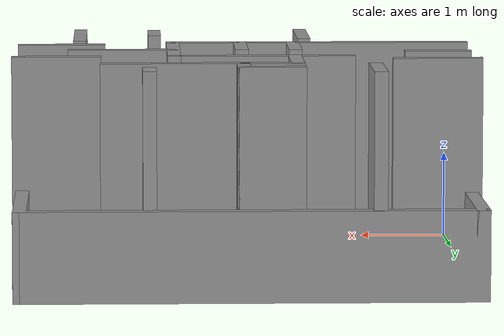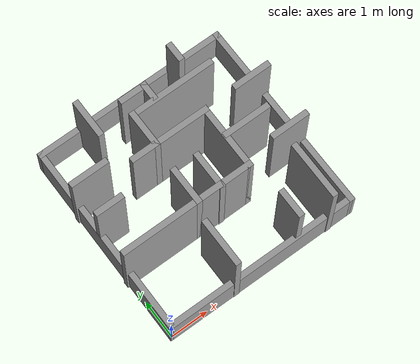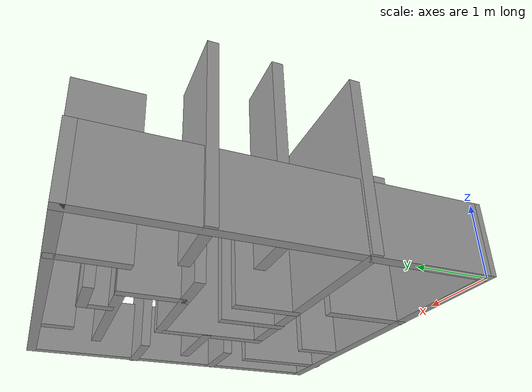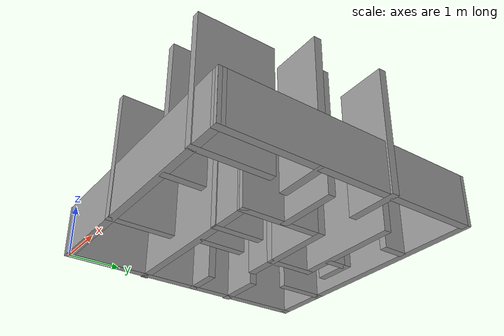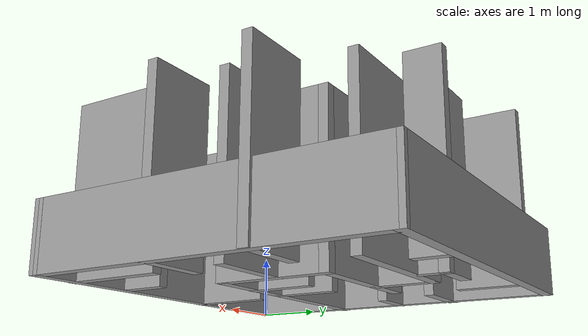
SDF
<?xml version='1.0'?>
<sdf version='1.7'>
  <model name='maze_gp_test'>
    <pose>2.50109 2.48306 0 0 -0 0</pose>
    <link name='Wall_0'>
      <collision name='Wall_0_Collision'>
        <geometry>
          <box>
            <size>5.15 0.15 1</size>
          </box>
        </geometry>
        <pose>0 0 0.5 0 -0 0</pose>
      </collision>
      <visual name='Wall_0_Visual'>
        <pose>0 0 0.5 0 -0 0</pose>
        <geometry>
          <box>
            <size>5.15 0.15 1</size>
          </box>
        </geometry>
        <material>
          <script>
            <uri>file://media/materials/scripts/gazebo.material</uri>
            <name>Gazebo/Grey</name>
          </script>
          <ambient>1 1 1 1</ambient>
        </material>
        <meta>
          <layer>0</layer>
        </meta>
      </visual>
      <pose>-2.50109 0.016936 0 0 -0 1.5708</pose>
    </link>
    <link name='Wall_10'>
      <collision name='Wall_10_Collision'>
        <geometry>
          <box>
            <size>1.5 0.15 2.5</size>
          </box>
        </geometry>
        <pose>0 0 1.25 0 -0 0</pose>
      </collision>
      <visual name='Wall_10_Visual'>
        <pose>0 0 1.25 0 -0 0</pose>
        <geometry>
          <box>
            <size>1.5 0.15 2.5</size>
          </box>
        </geometry>
        <material>
          <script>
            <uri>file://media/materials/scripts/gazebo.material</uri>
            <name>Gazebo/Grey</name>
          </script>
          <ambient>1 1 1 1</ambient>
        </material>
        <meta>
          <layer>0</layer>
        </meta>
      </visual>
      <pose>0.130196 0.709342 0 0 -0 3.14159</pose>
    </link>
    <link name='Wall_11'>
      <collision name='Wall_11_Collision'>
        <geometry>
          <box>
            <size>1 0.15 2.5</size>
          </box>
        </geometry>
        <pose>0 0 1.25 0 -0 0</pose>
      </collision>
      <visual name='Wall_11_Visual'>
        <pose>0 0 1.25 0 -0 0</pose>
        <geometry>
          <box>
            <size>1 0.15 2.5</size>
          </box>
        </geometry>
        <material>
          <script>
            <uri>file://media/materials/scripts/gazebo.material</uri>
            <name>Gazebo/Grey</name>
          </script>
          <ambient>1 1 1 1</ambient>
        </material>
        <meta>
          <layer>0</layer>
        </meta>
      </visual>
      <pose>-0.544804 1.13434 0 0 -0 1.5708</pose>
    </link>
    <link name='Wall_12'>
      <collision name='Wall_12_Collision'>
        <geometry>
          <box>
            <size>2.25 0.15 2.5</size>
          </box>
        </geometry>
        <pose>0 0 1.25 0 -0 0</pose>
      </collision>
      <visual name='Wall_12_Visual'>
        <pose>0 0 1.25 0 -0 0</pose>
        <geometry>
          <box>
            <size>2.25 0.15 2.5</size>
          </box>
        </geometry>
        <material>
          <script>
            <uri>file://media/materials/scripts/gazebo.material</uri>
            <name>Gazebo/Grey</name>
          </script>
          <ambient>1 1 1 1</ambient>
        </material>
        <meta>
          <layer>0</layer>
        </meta>
      </visual>
      <pose>0.505196 1.55934 0 0 -0 0</pose>
    </link>
    <link name='Wall_14'>
      <collision name='Wall_14_Collision'>
        <geometry>
          <box>
            <size>0.75 0.15 2.5</size>
          </box>
        </geometry>
        <pose>0 0 1.25 0 -0 0</pose>
      </collision>
      <visual name='Wall_14_Visual'>
        <pose>0 0 1.25 0 -0 0</pose>
        <geometry>
          <box>
            <size>0.75 0.15 2.5</size>
          </box>
        </geometry>
        <material>
          <script>
            <uri>file://media/materials/scripts/gazebo.material</uri>
            <name>Gazebo/Grey</name>
          </script>
          <ambient>1 1 1 1</ambient>
        </material>
        <meta>
          <layer>0</layer>
        </meta>
      </visual>
      <pose>1.00568 -2.14727 0 0 -0 1.5708</pose>
    </link>
    <link name='Wall_16'>
      <collision name='Wall_16_Collision'>
        <geometry>
          <box>
            <size>0.5 0.15 2.5</size>
          </box>
        </geometry>
        <pose>0 0 1.25 0 -0 0</pose>
      </collision>
      <visual name='Wall_16_Visual'>
        <pose>0 0 1.25 0 -0 0</pose>
        <geometry>
          <box>
            <size>0.5 0.15 2.5</size>
          </box>
        </geometry>
        <material>
          <script>
            <uri>file://media/materials/scripts/gazebo.material</uri>
            <name>Gazebo/Grey</name>
          </script>
          <ambient>1 1 1 1</ambient>
        </material>
        <meta>
          <layer>0</layer>
        </meta>
      </visual>
      <pose>0.061215 1.80291 0 0 -0 1.5708</pose>
    </link>
    <link name='Wall_17'>
      <collision name='Wall_17_Collision'>
        <geometry>
          <box>
            <size>0.75 0.15 2.5</size>
          </box>
        </geometry>
        <pose>0 0 1.25 0 -0 0</pose>
      </collision>
      <visual name='Wall_17_Visual'>
        <pose>0 0 1.25 0 -0 0</pose>
        <geometry>
          <box>
            <size>0.75 0.15 2.5</size>
          </box>
        </geometry>
        <material>
          <script>
            <uri>file://media/materials/scripts/gazebo.material</uri>
            <name>Gazebo/Grey</name>
          </script>
          <ambient>1 1 1 1</ambient>
        </material>
        <meta>
          <layer>0</layer>
        </meta>
      </visual>
      <pose>-0.238785 1.97791 0 0 -0 3.14159</pose>
    </link>
    <link name='Wall_19'>
      <collision name='Wall_19_Collision'>
        <geometry>
          <box>
            <size>0.75 0.15 2.5</size>
          </box>
        </geometry>
        <pose>0 0 1.25 0 -0 0</pose>
      </collision>
      <visual name='Wall_19_Visual'>
        <pose>0 0 1.25 0 -0 0</pose>
        <geometry>
          <box>
            <size>0.75 0.15 2.5</size>
          </box>
        </geometry>
        <material>
          <script>
            <uri>file://media/materials/scripts/gazebo.material</uri>
            <name>Gazebo/Grey</name>
          </script>
          <ambient>1 1 1 1</ambient>
        </material>
        <meta>
          <layer>0</layer>
        </meta>
      </visual>
      <pose>-0.844804 0.709342 0 0 -0 3.14159</pose>
    </link>
    <link name='Wall_2'>
      <collision name='Wall_2_Collision'>
        <geometry>
          <box>
            <size>5.17004 0.15 1</size>
          </box>
        </geometry>
        <pose>0 0 0.5 0 -0 0</pose>
      </collision>
      <visual name='Wall_2_Visual'>
        <pose>0 0 0.5 0 -0 0</pose>
        <geometry>
          <box>
            <size>5.17004 0.15 1</size>
          </box>
        </geometry>
        <material>
          <script>
            <uri>file://media/materials/scripts/gazebo.material</uri>
            <name>Gazebo/Grey</name>
          </script>
          <ambient>1 1 1 1</ambient>
        </material>
        <meta>
          <layer>0</layer>
        </meta>
      </visual>
      <pose>0.008911 -2.49306 0 0 -0 -0.003984</pose>
    </link>
    <link name='Wall_21'>
      <collision name='Wall_21_Collision'>
        <geometry>
          <box>
            <size>1 0.15 2.5</size>
          </box>
        </geometry>
        <pose>0 0 1.25 0 -0 0</pose>
      </collision>
      <visual name='Wall_21_Visual'>
        <pose>0 0 1.25 0 -0 0</pose>
        <geometry>
          <box>
            <size>1 0.15 2.5</size>
          </box>
        </geometry>
        <material>
          <script>
            <uri>file://media/materials/scripts/gazebo.material</uri>
            <name>Gazebo/Grey</name>
          </script>
          <ambient>1 1 1 1</ambient>
        </material>
        <meta>
          <layer>0</layer>
        </meta>
      </visual>
      <pose>-2.1198 1.03325 0 0 -0 0</pose>
    </link>
    <link name='Wall_23'>
      <collision name='Wall_23_Collision'>
        <geometry>
          <box>
            <size>1 0.15 2.5</size>
          </box>
        </geometry>
        <pose>0 0 1.25 0 -0 0</pose>
      </collision>
      <visual name='Wall_23_Visual'>
        <pose>0 0 1.25 0 -0 0</pose>
        <geometry>
          <box>
            <size>1 0.15 2.5</size>
          </box>
        </geometry>
        <material>
          <script>
            <uri>file://media/materials/scripts/gazebo.material</uri>
            <name>Gazebo/Grey</name>
          </script>
          <ambient>1 1 1 1</ambient>
        </material>
        <meta>
          <layer>0</layer>
        </meta>
      </visual>
      <pose>-1.39046 2.07741 0 0 -0 -1.5708</pose>
    </link>
    <link name='Wall_25'>
      <collision name='Wall_25_Collision'>
        <geometry>
          <box>
            <size>1 0.15 2.5</size>
          </box>
        </geometry>
        <pose>0 0 1.25 0 -0 0</pose>
      </collision>
      <visual name='Wall_25_Visual'>
        <pose>0 0 1.25 0 -0 0</pose>
        <geometry>
          <box>
            <size>1 0.15 2.5</size>
          </box>
        </geometry>
        <material>
          <script>
            <uri>file://media/materials/scripts/gazebo.material</uri>
            <name>Gazebo/Grey</name>
          </script>
          <ambient>1 1 1 1</ambient>
        </material>
        <meta>
          <layer>0</layer>
        </meta>
      </visual>
      <pose>2.08482 -0.680778 0 0 -0 3.14159</pose>
    </link>
    <link name='Wall_27'>
      <collision name='Wall_27_Collision'>
        <geometry>
          <box>
            <size>1.25 0.15 2.5</size>
          </box>
        </geometry>
        <pose>0 0 1.25 0 -0 0</pose>
      </collision>
      <visual name='Wall_27_Visual'>
        <pose>0 0 1.25 0 -0 0</pose>
        <geometry>
          <box>
            <size>1.25 0.15 2.5</size>
          </box>
        </geometry>
        <material>
          <script>
            <uri>file://media/materials/scripts/gazebo.material</uri>
            <name>Gazebo/Grey</name>
          </script>
          <ambient>1 1 1 1</ambient>
        </material>
        <meta>
          <layer>0</layer>
        </meta>
      </visual>
      <pose>-0.743328 -1.94974 0 0 -0 1.5708</pose>
    </link>
    <link name='Wall_29'>
      <collision name='Wall_29_Collision'>
        <geometry>
          <box>
            <size>1 0.15 2.5</size>
          </box>
        </geometry>
        <pose>0 0 1.25 0 -0 0</pose>
      </collision>
      <visual name='Wall_29_Visual'>
        <pose>0 0 1.25 0 -0 0</pose>
        <geometry>
          <box>
            <size>1 0.15 2.5</size>
          </box>
        </geometry>
        <material>
          <script>
            <uri>file://media/materials/scripts/gazebo.material</uri>
            <name>Gazebo/Grey</name>
          </script>
          <ambient>1 1 1 1</ambient>
        </material>
        <meta>
          <layer>0</layer>
        </meta>
      </visual>
      <pose>-0.585917 -0.465658 0 0 -0 1.5708</pose>
    </link>
    <link name='Wall_31'>
      <collision name='Wall_31_Collision'>
        <geometry>
          <box>
            <size>1 0.15 2.5</size>
          </box>
        </geometry>
        <pose>0 0 1.25 0 -0 0</pose>
      </collision>
      <visual name='Wall_31_Visual'>
        <pose>0 0 1.25 0 -0 0</pose>
        <geometry>
          <box>
            <size>1 0.15 2.5</size>
          </box>
        </geometry>
        <material>
          <script>
            <uri>file://media/materials/scripts/gazebo.material</uri>
            <name>Gazebo/Grey</name>
          </script>
          <ambient>1 1 1 1</ambient>
        </material>
        <meta>
          <layer>0</layer>
        </meta>
      </visual>
      <pose>0.026235 -0.483148 0 0 -0 1.5708</pose>
    </link>
    <link name='Wall_33'>
      <collision name='Wall_33_Collision'>
        <geometry>
          <box>
            <size>0.75 0.15 2.5</size>
          </box>
        </geometry>
        <pose>0 0 1.25 0 -0 0</pose>
      </collision>
      <visual name='Wall_33_Visual'>
        <pose>0 0 1.25 0 -0 0</pose>
        <geometry>
          <box>
            <size>0.75 0.15 2.5</size>
          </box>
        </geometry>
        <material>
          <script>
            <uri>file://media/materials/scripts/gazebo.material</uri>
            <name>Gazebo/Grey</name>
          </script>
          <ambient>1 1 1 1</ambient>
        </material>
        <meta>
          <layer>0</layer>
        </meta>
      </visual>
      <pose>-2.19233 0.176236 0 0 -0 0</pose>
    </link>
    <link name='Wall_35'>
      <collision name='Wall_35_Collision'>
        <geometry>
          <box>
            <size>0.5 0.15 2.5</size>
          </box>
        </geometry>
        <pose>0 0 1.25 0 -0 0</pose>
      </collision>
      <visual name='Wall_35_Visual'>
        <pose>0 0 1.25 0 -0 0</pose>
        <geometry>
          <box>
            <size>0.5 0.15 2.5</size>
          </box>
        </geometry>
        <material>
          <script>
            <uri>file://media/materials/scripts/gazebo.material</uri>
            <name>Gazebo/Grey</name>
          </script>
          <ambient>1 1 1 1</ambient>
        </material>
        <meta>
          <layer>0</layer>
        </meta>
      </visual>
      <pose>1.09313 2.22247 0 0 -0 -1.5708</pose>
    </link>
    <link name='Wall_37'>
      <collision name='Wall_37_Collision'>
        <geometry>
          <box>
            <size>1 0.15 2.5</size>
          </box>
        </geometry>
        <pose>0 0 1.25 0 -0 0</pose>
      </collision>
      <visual name='Wall_37_Visual'>
        <pose>0 0 1.25 0 -0 0</pose>
        <geometry>
          <box>
            <size>1 0.15 2.5</size>
          </box>
        </geometry>
        <material>
          <script>
            <uri>file://media/materials/scripts/gazebo.material</uri>
            <name>Gazebo/Grey</name>
          </script>
          <ambient>1 1 1 1</ambient>
        </material>
        <meta>
          <layer>0</layer>
        </meta>
      </visual>
      <pose>2.1198 0.753408 0 0 -0 3.14159</pose>
    </link>
    <link name='Wall_39'>
      <collision name='Wall_39_Collision'>
        <geometry>
          <box>
            <size>1.25 0.15 2.5</size>
          </box>
        </geometry>
        <pose>0 0 1.25 0 -0 0</pose>
      </collision>
      <visual name='Wall_39_Visual'>
        <pose>0 0 1.25 0 -0 0</pose>
        <geometry>
          <box>
            <size>1.25 0.15 2.5</size>
          </box>
        </geometry>
        <material>
          <script>
            <uri>file://media/materials/scripts/gazebo.material</uri>
            <name>Gazebo/Grey</name>
          </script>
          <ambient>1 1 1 1</ambient>
        </material>
        <meta>
          <layer>0</layer>
        </meta>
      </visual>
      <pose>1.38078 -0.033645 0 0 -0 0</pose>
    </link>
    <link name='Wall_4'>
      <collision name='Wall_4_Collision'>
        <geometry>
          <box>
            <size>5.17004 0.15 1</size>
          </box>
        </geometry>
        <pose>0 0 0.5 0 -0 0</pose>
      </collision>
      <visual name='Wall_4_Visual'>
        <pose>0 0 0.5 0 -0 0</pose>
        <geometry>
          <box>
            <size>5.17004 0.15 1</size>
          </box>
        </geometry>
        <material>
          <script>
            <uri>file://media/materials/scripts/gazebo.material</uri>
            <name>Gazebo/Grey</name>
          </script>
          <ambient>1 1 1 1</ambient>
        </material>
        <meta>
          <layer>0</layer>
        </meta>
      </visual>
      <pose>2.50891 0.006936 0 0 -0 1.57478</pose>
    </link>
    <link name='Wall_41'>
      <collision name='Wall_41_Collision'>
        <geometry>
          <box>
            <size>1.5 0.15 2.5</size>
          </box>
        </geometry>
        <pose>0 0 1.25 0 -0 0</pose>
      </collision>
      <visual name='Wall_41_Visual'>
        <pose>0 0 1.25 0 -0 0</pose>
        <geometry>
          <box>
            <size>1.5 0.15 2.5</size>
          </box>
        </geometry>
        <material>
          <script>
            <uri>file://media/materials/scripts/gazebo.material</uri>
            <name>Gazebo/Grey</name>
          </script>
          <ambient>1 1 1 1</ambient>
        </material>
        <meta>
          <layer>0</layer>
        </meta>
      </visual>
      <pose>1.88018 -1.84223 0 0 -0 1.5708</pose>
    </link>
    <link name='Wall_6'>
      <collision name='Wall_6_Collision'>
        <geometry>
          <box>
            <size>5.15004 0.15 1</size>
          </box>
        </geometry>
        <pose>0 0 0.5 0 -0 0</pose>
      </collision>
      <visual name='Wall_6_Visual'>
        <pose>0 0 0.5 0 -0 0</pose>
        <geometry>
          <box>
            <size>5.15004 0.15 1</size>
          </box>
        </geometry>
        <material>
          <script>
            <uri>file://media/materials/scripts/gazebo.material</uri>
            <name>Gazebo/Grey</name>
          </script>
          <ambient>1 1 1 1</ambient>
        </material>
        <meta>
          <layer>0</layer>
        </meta>
      </visual>
      <pose>-0.001089 2.51694 0 0 -0 0</pose>
    </link>
    <link name='Wall_8'>
      <collision name='Wall_8_Collision'>
        <geometry>
          <box>
            <size>3.5 0.15 2.5</size>
          </box>
        </geometry>
        <pose>0 0 1.25 0 -0 0</pose>
      </collision>
      <visual name='Wall_8_Visual'>
        <pose>0 0 1.25 0 -0 0</pose>
        <geometry>
          <box>
            <size>3.5 0.15 2.5</size>
          </box>
        </geometry>
        <material>
          <script>
            <uri>file://media/materials/scripts/gazebo.material</uri>
            <name>Gazebo/Grey</name>
          </script>
          <ambient>1 1 1 1</ambient>
        </material>
        <meta>
          <layer>0</layer>
        </meta>
      </visual>
      <pose>-0.869804 -0.890658 0 0 -0 0</pose>
    </link>
    <link name='Wall_9'>
      <collision name='Wall_9_Collision'>
        <geometry>
          <box>
            <size>1.75 0.15 2.5</size>
          </box>
        </geometry>
        <pose>0 0 1.25 0 -0 0</pose>
      </collision>
      <visual name='Wall_9_Visual'>
        <pose>0 0 1.25 0 -0 0</pose>
        <geometry>
          <box>
            <size>1.75 0.15 2.5</size>
          </box>
        </geometry>
        <material>
          <script>
            <uri>file://media/materials/scripts/gazebo.material</uri>
            <name>Gazebo/Grey</name>
          </script>
          <ambient>1 1 1 1</ambient>
        </material>
        <meta>
          <layer>0</layer>
        </meta>
      </visual>
      <pose>0.805196 -0.090658 0 0 -0 1.5708</pose>
    </link>
    <static>1</static>
  </model>
</sdf>
